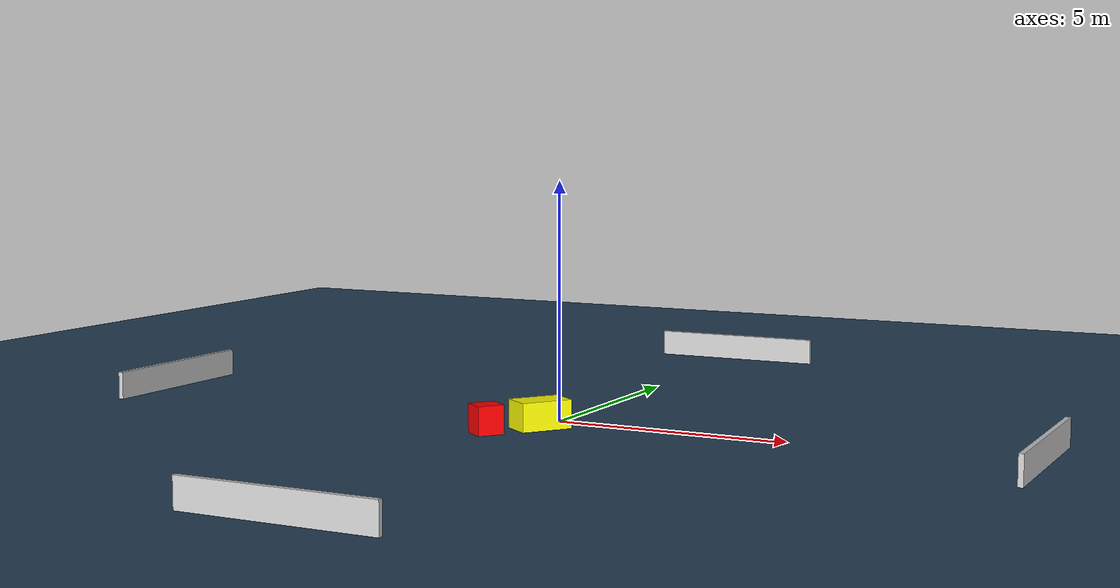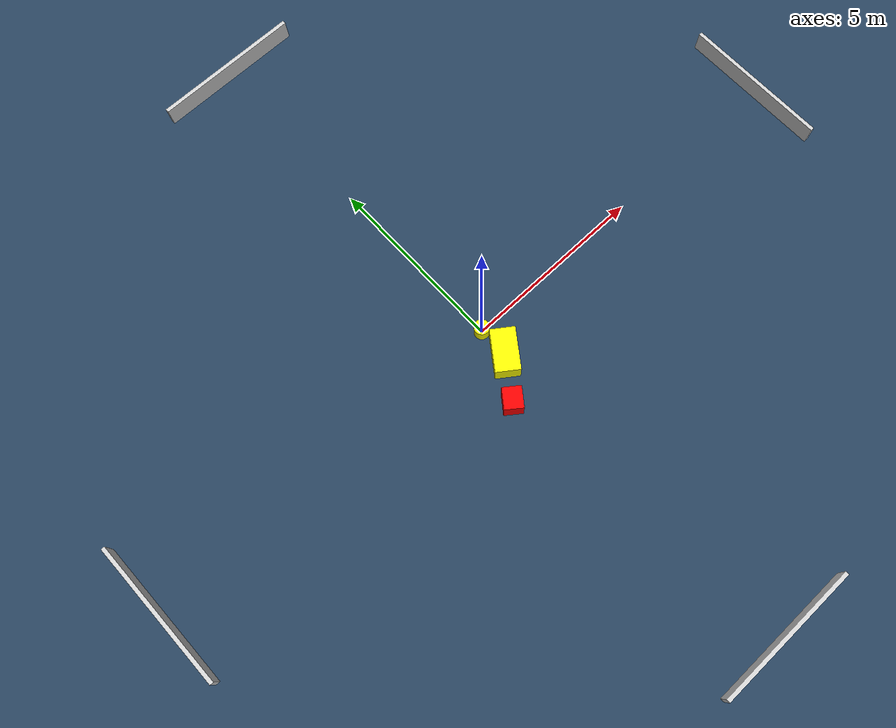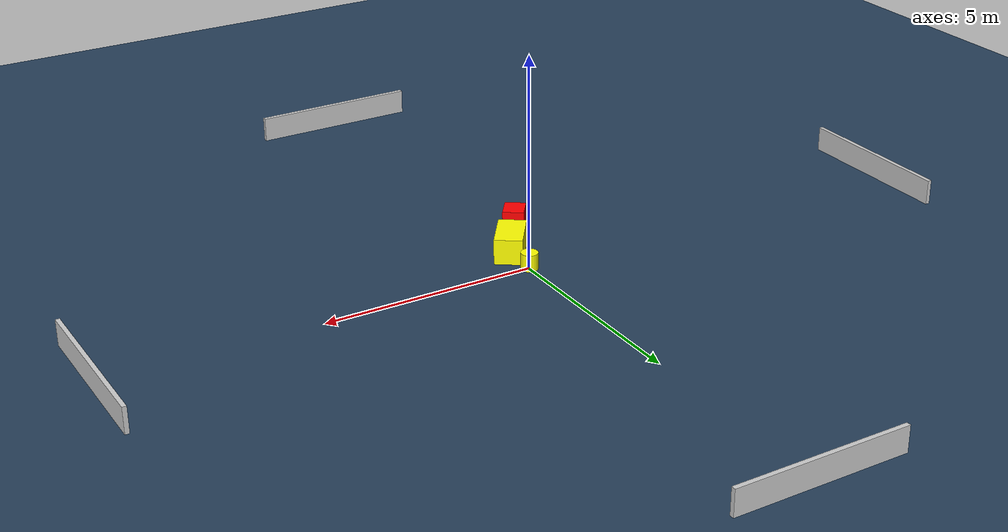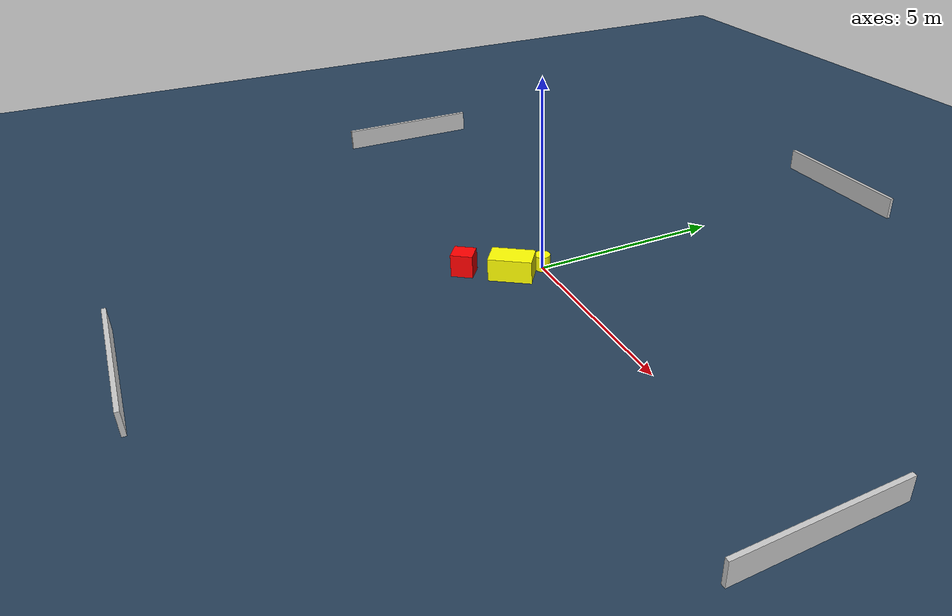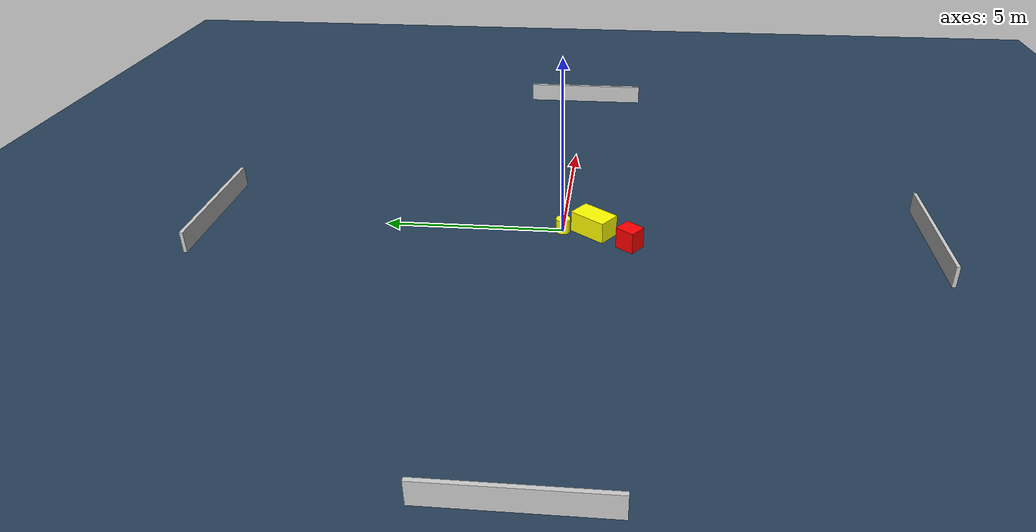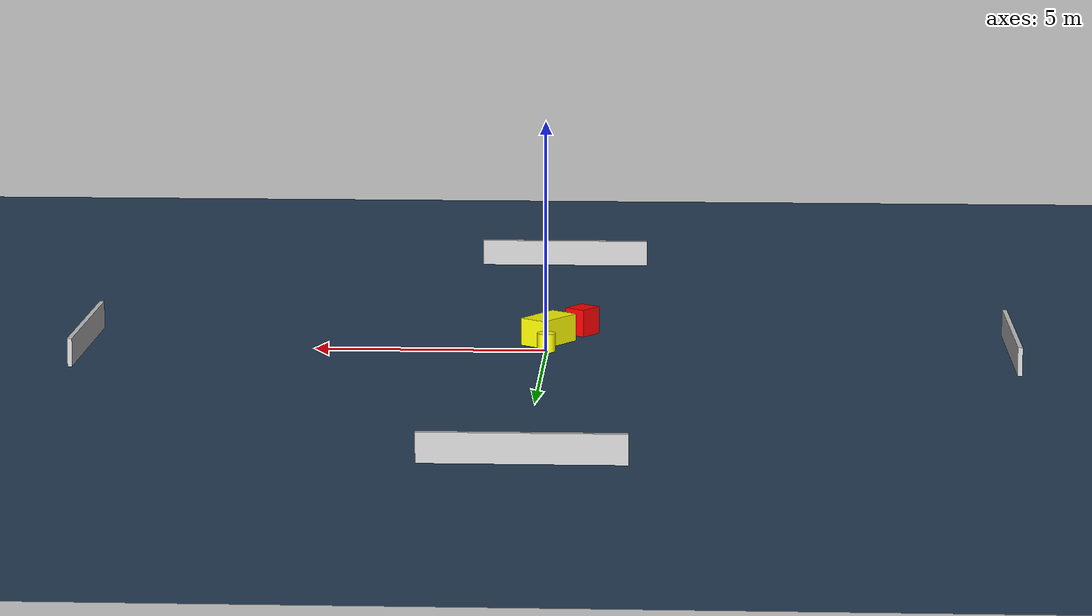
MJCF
<?xml version="1.0" ?>
<mujoco model="generated_environment">
  <option timestep="0.01" integrator="RK4" cone="elliptic"/>
  <default>
    <geom density="1"/>
  </default>
  <asset>
    <texture builtin="gradient" height="3072" name="skybox" rgb1="0.3 0.5 0.7" rgb2="0 0 0" type="skybox" width="512"/>
    <texture builtin="checker" height="300" name="groundplane" rgb1="0.2 0.3 0.4" rgb2="0.1 0.2 0.3" type="2d" width="300"/>
    <material name="groundplane" reflectance="0.2" texrepeat="5 5" texture="groundplane"/>
  </asset>
  <worldbody>
    <light dir="0 0 -1" directional="true" pos="0 0 1.5"/>
    <geom condim="3" friction="0.5 0.005 0.001" material="groundplane" name="floor" pos="0 0 0" size="0 0 0.05" type="plane"/>
    <body name="walls">
      <geom name="wall_1" condim="4" pos="-10.0 0.0 0.3" rgba="0.800000011920929 0.800000011920929 0.800000011920929 1.0" size="0.05 2.0 0.3" type="box"/>
      <geom name="wall_2" condim="4" pos="10.0 0.0 0.3" rgba="0.800000011920929 0.800000011920929 0.800000011920929 1.0" size="0.05 2.0 0.3" type="box"/>
      <geom name="wall_3" condim="4" pos="0.0 -10.0 0.3" rgba="0.800000011920929 0.800000011920929 0.800000011920929 1.0" size="2.0 0.05 0.3" type="box"/>
      <geom name="wall_4" condim="4" pos="0.0 10.0 0.3" rgba="0.800000011920929 0.800000011920929 0.800000011920929 1.0" size="2.0 0.05 0.3" type="box"/>
    </body>
    <body name="robot">
      <joint name="joint_x" type="slide" pos="0 0 0" axis="1 0 0"/>
      <joint name="joint_y" type="slide" pos="0 0 0" axis="0 1 0"/>
      <geom name="robot" type="cylinder" pos="0.0 0.0 0.2" size="0.2 0.2 0.0" mass="5.0" friction="1.0 0.005 0.0001" condim="4" rgba="1.0 1.0 0.0 1.0"/>
    </body>
    <body name="obstacle_1_movable">
      <geom name="obstacle_1_movable" condim="4" pos="-0.014205425639249373 -0.8512676806276752 0.3" euler="0 0 54.19704244741956" friction="0.0 0.005 0.001" rgba="1.0 1.0 0.0 1.0" size="0.5524574758934315 0.32376291934750917 0.3" type="box" mass="0.1"/>
      <joint type="free"/>
    </body>
    <body name="obstacle_2_static">
      <geom name="obstacle_2_static" condim="4" pos="-0.7163710742288776 -1.853048898558801 0.3" euler="0 0 143.13205326309608" friction="0.0 0.005 0.001" rgba="1.0 0.0 0.0 1.0" size="0.2477403269527601 0.28071330567714514 0.3" type="box"/>
    </body>
  </worldbody>
  <actuator>
    <motor name="actuator_x" joint="joint_x" gear="1" ctrlrange="-1 1"/>
    <motor name="actuator_y" joint="joint_y" gear="1" ctrlrange="-1 1"/>
  </actuator>
</mujoco>
